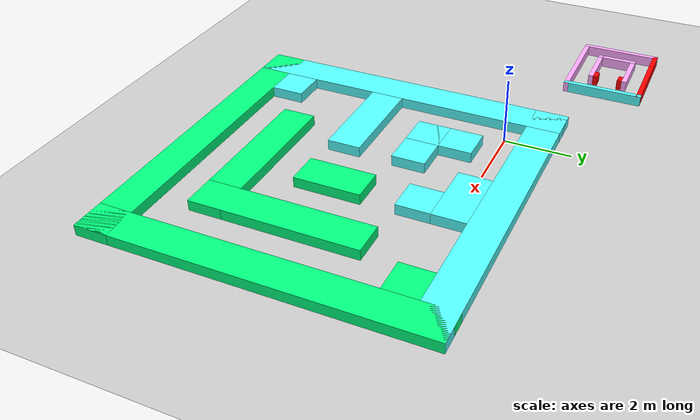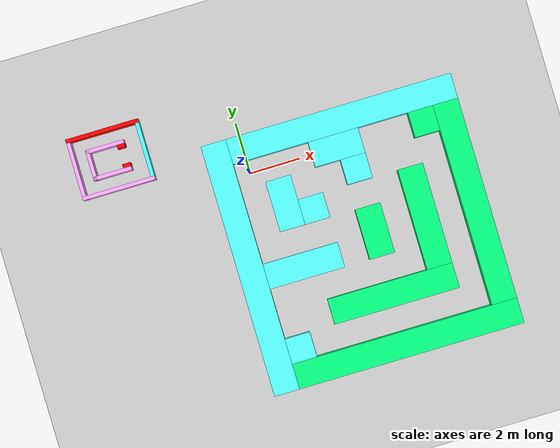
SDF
<sdf version="1.4">
  <world name="default">

    <scene>
      <ambient>0.4 0.4 0.4 1</ambient>
      <background>0.7 0.7 0.7 1</background>
      <shadows>true</shadows>
    </scene>

    <!-- A global light source -->
    <include>
      <uri>model://sun</uri>
    </include>

    <!-- A ground plane -->
    <include>
      <uri>model://ground_plane</uri>
    </include>

    <!-- Gait2.0's maze -->
    <include>
      <uri>model://gait_maze2.0</uri>
        <pose>5.066191 -3.515671 0 0 0 0</pose>
    </include>

    <!-- Doll's maze -->
    <include>
      <uri>model://doll_maze</uri>
        <pose>-5 2 0 0 0 0</pose>
    </include>

    <physics type="ode">
      <real_time_update_rate>1000.0</real_time_update_rate>
      <max_step_size>0.001</max_step_size>
      <real_time_factor>1</real_time_factor>
      <ode>
        <solver>
          <type>quick</type>
          <iters>150</iters>
          <precon_iters>0</precon_iters>
          <sor>1.400000</sor>
          <use_dynamic_moi_rescaling>1</use_dynamic_moi_rescaling>
        </solver>
        <constraints>
          <cfm>0.00001</cfm>
          <erp>0.2</erp>
          <contact_max_correcting_vel>2000.000000</contact_max_correcting_vel>
          <contact_surface_layer>0.01000</contact_surface_layer>
        </constraints>
      </ode>
    </physics>
  </world>

</sdf>

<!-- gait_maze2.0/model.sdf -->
<sdf version='1.6'>
  <model name='gait_maze2.0'>
    <link name='Wall_10'>
      <pose frame=''>-4.10576 2 0 0 0 -1.5708</pose>
      <self_collide>0</self_collide>
      <kinematic>0</kinematic>
      <visual name='Wall_10_Visual'>
        <pose frame=''>0 0 0.16 0 -0 0</pose>
        <geometry>
          <box>
            <size>2 1 0.32</size>
          </box>
        </geometry>
        <material>
          <script>
            <uri>file://media/materials/scripts/gazebo.material</uri>
            <name>Gazebo/Grey</name>
          </script>
          <ambient>0.333333 1 1 1</ambient>
          <diffuse>0.7 0.7 0.7 1</diffuse>
          <specular>0.01 0.01 0.01 1</specular>
          <emissive>0 0 0 1</emissive>
        </material>
        <cast_shadows>1</cast_shadows>
        <transparency>0</transparency>
      </visual>
      <collision name='Wall_10_Collision'>
        <laser_retro>0</laser_retro>
        <max_contacts>10</max_contacts>
        <pose frame=''>0 0 0.16 0 -0 0</pose>
        <geometry>
          <box>
            <size>2 1 0.32</size>
          </box>
        </geometry>
        <surface>
          <friction>
            <ode>
              <mu>1</mu>
              <mu2>1</mu2>
              <fdir1>0 0 0</fdir1>
              <slip1>0</slip1>
              <slip2>0</slip2>
            </ode>
            <torsional>
              <coefficient>1</coefficient>
              <patch_radius>0</patch_radius>
              <surface_radius>0</surface_radius>
              <use_patch_radius>1</use_patch_radius>
              <ode>
                <slip>0</slip>
              </ode>
            </torsional>
          </friction>
          <bounce>
            <restitution_coefficient>0</restitution_coefficient>
            <threshold>1e+06</threshold>
          </bounce>
          <contact>
            <collide_without_contact>0</collide_without_contact>
            <collide_without_contact_bitmask>1</collide_without_contact_bitmask>
            <collide_bitmask>1</collide_bitmask>
            <ode>
              <soft_cfm>0</soft_cfm>
              <soft_erp>0.2</soft_erp>
              <kp>1e+13</kp>
              <kd>1</kd>
              <max_vel>0.01</max_vel>
              <min_depth>0</min_depth>
            </ode>
            <bullet>
              <split_impulse>1</split_impulse>
              <split_impulse_penetration_threshold>-0.01</split_impulse_penetration_threshold>
              <soft_cfm>0</soft_cfm>
              <soft_erp>0.2</soft_erp>
              <kp>1e+13</kp>
              <kd>1</kd>
            </bullet>
          </contact>
        </surface>
      </collision>
    </link>
    <link name='Wall_13'>
      <pose frame=''>-3.60576 1.5 0 0 -0 0</pose>
      <self_collide>0</self_collide>
      <kinematic>0</kinematic>
      <visual name='Wall_13_Visual'>
        <pose frame=''>0 0 0.16 0 -0 0</pose>
        <geometry>
          <box>
            <size>2 1 0.32</size>
          </box>
        </geometry>
        <material>
          <script>
            <uri>file://media/materials/scripts/gazebo.material</uri>
            <name>Gazebo/Grey</name>
          </script>
          <ambient>0.333333 1 1 1</ambient>
          <diffuse>0.7 0.7 0.7 1</diffuse>
          <specular>0.01 0.01 0.01 1</specular>
          <emissive>0 0 0 1</emissive>
        </material>
        <cast_shadows>1</cast_shadows>
        <transparency>0</transparency>
      </visual>
      <collision name='Wall_13_Collision'>
        <laser_retro>0</laser_retro>
        <max_contacts>10</max_contacts>
        <pose frame=''>0 0 0.16 0 -0 0</pose>
        <geometry>
          <box>
            <size>2 1 0.32</size>
          </box>
        </geometry>
        <surface>
          <friction>
            <ode>
              <mu>1</mu>
              <mu2>1</mu2>
              <fdir1>0 0 0</fdir1>
              <slip1>0</slip1>
              <slip2>0</slip2>
            </ode>
            <torsional>
              <coefficient>1</coefficient>
              <patch_radius>0</patch_radius>
              <surface_radius>0</surface_radius>
              <use_patch_radius>1</use_patch_radius>
              <ode>
                <slip>0</slip>
              </ode>
            </torsional>
          </friction>
          <bounce>
            <restitution_coefficient>0</restitution_coefficient>
            <threshold>1e+06</threshold>
          </bounce>
          <contact>
            <collide_without_contact>0</collide_without_contact>
            <collide_without_contact_bitmask>1</collide_without_contact_bitmask>
            <collide_bitmask>1</collide_bitmask>
            <ode>
              <soft_cfm>0</soft_cfm>
              <soft_erp>0.2</soft_erp>
              <kp>1e+13</kp>
              <kd>1</kd>
              <max_vel>0.01</max_vel>
              <min_depth>0</min_depth>
            </ode>
            <bullet>
              <split_impulse>1</split_impulse>
              <split_impulse_penetration_threshold>-0.01</split_impulse_penetration_threshold>
              <soft_cfm>0</soft_cfm>
              <soft_erp>0.2</soft_erp>
              <kp>1e+13</kp>
              <kd>1</kd>
            </bullet>
          </contact>
        </surface>
      </collision>
    </link>
    <link name='Wall_15'>
      <pose frame=''>-1.60576 3.5 0 0 -0 0</pose>
      <self_collide>0</self_collide>
      <kinematic>0</kinematic>
      <visual name='Wall_15_Visual'>
        <pose frame=''>0 0 0.16 0 -0 0</pose>
        <geometry>
          <box>
            <size>2 1 0.32</size>
          </box>
        </geometry>
        <material>
          <script>
            <uri>file://media/materials/scripts/gazebo.material</uri>
            <name>Gazebo/Grey</name>
          </script>
          <ambient>0.333333 1 1 1</ambient>
          <diffuse>0.7 0.7 0.7 1</diffuse>
          <specular>0.01 0.01 0.01 1</specular>
          <emissive>0 0 0 1</emissive>
        </material>
        <cast_shadows>1</cast_shadows>
        <transparency>0</transparency>
      </visual>
      <collision name='Wall_15_Collision'>
        <laser_retro>0</laser_retro>
        <max_contacts>10</max_contacts>
        <pose frame=''>0 0 0.16 0 -0 0</pose>
        <geometry>
          <box>
            <size>2 1 0.32</size>
          </box>
        </geometry>
        <surface>
          <friction>
            <ode>
              <mu>1</mu>
              <mu2>1</mu2>
              <fdir1>0 0 0</fdir1>
              <slip1>0</slip1>
              <slip2>0</slip2>
            </ode>
            <torsional>
              <coefficient>1</coefficient>
              <patch_radius>0</patch_radius>
              <surface_radius>0</surface_radius>
              <use_patch_radius>1</use_patch_radius>
              <ode>
                <slip>0</slip>
              </ode>
            </torsional>
          </friction>
          <bounce>
            <restitution_coefficient>0</restitution_coefficient>
            <threshold>1e+06</threshold>
          </bounce>
          <contact>
            <collide_without_contact>0</collide_without_contact>
            <collide_without_contact_bitmask>1</collide_without_contact_bitmask>
            <collide_bitmask>1</collide_bitmask>
            <ode>
              <soft_cfm>0</soft_cfm>
              <soft_erp>0.2</soft_erp>
              <kp>1e+13</kp>
              <kd>1</kd>
              <max_vel>0.01</max_vel>
              <min_depth>0</min_depth>
            </ode>
            <bullet>
              <split_impulse>1</split_impulse>
              <split_impulse_penetration_threshold>-0.01</split_impulse_penetration_threshold>
              <soft_cfm>0</soft_cfm>
              <soft_erp>0.2</soft_erp>
              <kp>1e+13</kp>
              <kd>1</kd>
            </bullet>
          </contact>
        </surface>
      </collision>
    </link>
    <link name='Wall_17'>
      <pose frame=''>1.89474 3.5 0 0 -0 0</pose>
      <self_collide>0</self_collide>
      <kinematic>0</kinematic>
      <visual name='Wall_17_Visual'>
        <pose frame=''>0 0 0.16 0 -0 0</pose>
        <geometry>
          <box>
            <size>1 1 0.32</size>
          </box>
        </geometry>
        <material>
          <script>
            <uri>file://media/materials/scripts/gazebo.material</uri>
            <name>Gazebo/Grey</name>
          </script>
          <ambient>0 1 0.498039 1</ambient>
          <diffuse>0.7 0.7 0.7 1</diffuse>
          <specular>0.01 0.01 0.01 1</specular>
          <emissive>0 0 0 1</emissive>
        </material>
        <cast_shadows>1</cast_shadows>
        <transparency>0</transparency>
      </visual>
      <collision name='Wall_17_Collision'>
        <laser_retro>0</laser_retro>
        <max_contacts>10</max_contacts>
        <pose frame=''>0 0 0.16 0 -0 0</pose>
        <geometry>
          <box>
            <size>1 1 0.32</size>
          </box>
        </geometry>
        <surface>
          <friction>
            <ode>
              <mu>1</mu>
              <mu2>1</mu2>
              <fdir1>0 0 0</fdir1>
              <slip1>0</slip1>
              <slip2>0</slip2>
            </ode>
            <torsional>
              <coefficient>1</coefficient>
              <patch_radius>0</patch_radius>
              <surface_radius>0</surface_radius>
              <use_patch_radius>1</use_patch_radius>
              <ode>
                <slip>0</slip>
              </ode>
            </torsional>
          </friction>
          <bounce>
            <restitution_coefficient>0</restitution_coefficient>
            <threshold>1e+06</threshold>
          </bounce>
          <contact>
            <collide_without_contact>0</collide_without_contact>
            <collide_without_contact_bitmask>1</collide_without_contact_bitmask>
            <collide_bitmask>1</collide_bitmask>
            <ode>
              <soft_cfm>0</soft_cfm>
              <soft_erp>0.2</soft_erp>
              <kp>1e+13</kp>
              <kd>1</kd>
              <max_vel>0.01</max_vel>
              <min_depth>0</min_depth>
            </ode>
            <bullet>
              <split_impulse>1</split_impulse>
              <split_impulse_penetration_threshold>-0.01</split_impulse_penetration_threshold>
              <soft_cfm>0</soft_cfm>
              <soft_erp>0.2</soft_erp>
              <kp>1e+13</kp>
              <kd>1</kd>
            </bullet>
          </contact>
        </surface>
      </collision>
    </link>
    <link name='Wall_19'>
      <pose frame=''>-5.10626 -3.5 0 0 -0 0</pose>
      <self_collide>0</self_collide>
      <kinematic>0</kinematic>
      <visual name='Wall_19_Visual'>
        <pose frame=''>0 0 0.16 0 -0 0</pose>
        <geometry>
          <box>
            <size>1.001 1 0.32</size>
          </box>
        </geometry>
        <material>
          <script>
            <uri>file://media/materials/scripts/gazebo.material</uri>
            <name>Gazebo/Grey</name>
          </script>
          <ambient>0.333333 1 1 1</ambient>
          <diffuse>0.7 0.7 0.7 1</diffuse>
          <specular>0.01 0.01 0.01 1</specular>
          <emissive>0 0 0 1</emissive>
        </material>
        <cast_shadows>1</cast_shadows>
        <transparency>0</transparency>
      </visual>
      <collision name='Wall_19_Collision'>
        <laser_retro>0</laser_retro>
        <max_contacts>10</max_contacts>
        <pose frame=''>0 0 0.16 0 -0 0</pose>
        <geometry>
          <box>
            <size>1.001 1 0.32</size>
          </box>
        </geometry>
        <surface>
          <friction>
            <ode>
              <mu>1</mu>
              <mu2>1</mu2>
              <fdir1>0 0 0</fdir1>
              <slip1>0</slip1>
              <slip2>0</slip2>
            </ode>
            <torsional>
              <coefficient>1</coefficient>
              <patch_radius>0</patch_radius>
              <surface_radius>0</surface_radius>
              <use_patch_radius>1</use_patch_radius>
              <ode>
                <slip>0</slip>
              </ode>
            </torsional>
          </friction>
          <bounce>
            <restitution_coefficient>0</restitution_coefficient>
            <threshold>1e+06</threshold>
          </bounce>
          <contact>
            <collide_without_contact>0</collide_without_contact>
            <collide_without_contact_bitmask>1</collide_without_contact_bitmask>
            <collide_bitmask>1</collide_bitmask>
            <ode>
              <soft_cfm>0</soft_cfm>
              <soft_erp>0.2</soft_erp>
              <kp>1e+13</kp>
              <kd>1</kd>
              <max_vel>0.01</max_vel>
              <min_depth>0</min_depth>
            </ode>
            <bullet>
              <split_impulse>1</split_impulse>
              <split_impulse_penetration_threshold>-0.01</split_impulse_penetration_threshold>
              <soft_cfm>0</soft_cfm>
              <soft_erp>0.2</soft_erp>
              <kp>1e+13</kp>
              <kd>1</kd>
            </bullet>
          </contact>
        </surface>
      </collision>
    </link>
    <link name='Wall_2'>
      <pose frame=''>-6.10576 0 0 0 -0 1.5708</pose>
      <self_collide>0</self_collide>
      <kinematic>0</kinematic>
      <visual name='Wall_2_Visual'>
        <pose frame=''>0 0 0.16 0 -0 0</pose>
        <geometry>
          <box>
            <size>10 1 0.32</size>
          </box>
        </geometry>
        <material>
          <script>
            <uri>file://media/materials/scripts/gazebo.material</uri>
            <name>Gazebo/Grey</name>
          </script>
          <ambient>0.333333 1 1 1</ambient>
          <diffuse>0.7 0.7 0.7 1</diffuse>
          <specular>0.01 0.01 0.01 1</specular>
          <emissive>0 0 0 1</emissive>
        </material>
        <cast_shadows>1</cast_shadows>
        <transparency>0</transparency>
      </visual>
      <collision name='Wall_2_Collision'>
        <laser_retro>0</laser_retro>
        <max_contacts>10</max_contacts>
        <pose frame=''>0 0 0.16 0 -0 0</pose>
        <geometry>
          <box>
            <size>10 1 0.32</size>
          </box>
        </geometry>
        <surface>
          <friction>
            <ode>
              <mu>1</mu>
              <mu2>1</mu2>
              <fdir1>0 0 0</fdir1>
              <slip1>0</slip1>
              <slip2>0</slip2>
            </ode>
            <torsional>
              <coefficient>1</coefficient>
              <patch_radius>0</patch_radius>
              <surface_radius>0</surface_radius>
              <use_patch_radius>1</use_patch_radius>
              <ode>
                <slip>0</slip>
              </ode>
            </torsional>
          </friction>
          <bounce>
            <restitution_coefficient>0</restitution_coefficient>
            <threshold>1e+06</threshold>
          </bounce>
          <contact>
            <collide_without_contact>0</collide_without_contact>
            <collide_without_contact_bitmask>1</collide_without_contact_bitmask>
            <collide_bitmask>1</collide_bitmask>
            <ode>
              <soft_cfm>0</soft_cfm>
              <soft_erp>0.2</soft_erp>
              <kp>1e+13</kp>
              <kd>1</kd>
              <max_vel>0.01</max_vel>
              <min_depth>0</min_depth>
            </ode>
            <bullet>
              <split_impulse>1</split_impulse>
              <split_impulse_penetration_threshold>-0.01</split_impulse_penetration_threshold>
              <soft_cfm>0</soft_cfm>
              <soft_erp>0.2</soft_erp>
              <kp>1e+13</kp>
              <kd>1</kd>
            </bullet>
          </contact>
        </surface>
      </collision>
    </link>
    <link name='Wall_21'>
      <pose frame=''>-1.10576 -2.5 0 0 -0 0</pose>
      <self_collide>0</self_collide>
      <kinematic>0</kinematic>
      <visual name='Wall_21_Visual'>
        <pose frame=''>0 0 0.16 0 -0 0</pose>
        <geometry>
          <box>
            <size>5 1 0.32</size>
          </box>
        </geometry>
        <material>
          <script>
            <uri>file://media/materials/scripts/gazebo.material</uri>
            <name>Gazebo/Grey</name>
          </script>
          <ambient>0 1 0.498039 1</ambient>
          <diffuse>0.7 0.7 0.7 1</diffuse>
          <specular>0.01 0.01 0.01 1</specular>
          <emissive>0 0 0 1</emissive>
        </material>
        <cast_shadows>1</cast_shadows>
        <transparency>0</transparency>
      </visual>
      <collision name='Wall_21_Collision'>
        <laser_retro>0</laser_retro>
        <max_contacts>10</max_contacts>
        <pose frame=''>0 0 0.16 0 -0 0</pose>
        <geometry>
          <box>
            <size>5 1 0.32</size>
          </box>
        </geometry>
        <surface>
          <friction>
            <ode>
              <mu>1</mu>
              <mu2>1</mu2>
              <fdir1>0 0 0</fdir1>
              <slip1>0</slip1>
              <slip2>0</slip2>
            </ode>
            <torsional>
              <coefficient>1</coefficient>
              <patch_radius>0</patch_radius>
              <surface_radius>0</surface_radius>
              <use_patch_radius>1</use_patch_radius>
              <ode>
                <slip>0</slip>
              </ode>
            </torsional>
          </friction>
          <bounce>
            <restitution_coefficient>0</restitution_coefficient>
            <threshold>1e+06</threshold>
          </bounce>
          <contact>
            <collide_without_contact>0</collide_without_contact>
            <collide_without_contact_bitmask>1</collide_without_contact_bitmask>
            <collide_bitmask>1</collide_bitmask>
            <ode>
              <soft_cfm>0</soft_cfm>
              <soft_erp>0.2</soft_erp>
              <kp>1e+13</kp>
              <kd>1</kd>
              <max_vel>0.01</max_vel>
              <min_depth>0</min_depth>
            </ode>
            <bullet>
              <split_impulse>1</split_impulse>
              <split_impulse_penetration_threshold>-0.01</split_impulse_penetration_threshold>
              <soft_cfm>0</soft_cfm>
              <soft_erp>0.2</soft_erp>
              <kp>1e+13</kp>
              <kd>1</kd>
            </bullet>
          </contact>
        </surface>
      </collision>
    </link>
    <link name='Wall_23'>
      <pose frame=''>0.89424 -0.5 0 0 0 -1.5708</pose>
      <self_collide>0</self_collide>
      <kinematic>0</kinematic>
      <visual name='Wall_23_Visual'>
        <pose frame=''>0 0 0.16 0 -0 0</pose>
        <geometry>
          <box>
            <size>5 1 0.32</size>
          </box>
        </geometry>
        <material>
          <script>
            <uri>file://media/materials/scripts/gazebo.material</uri>
            <name>Gazebo/Grey</name>
          </script>
          <ambient>0 1 0.498039 1</ambient>
          <diffuse>0.7 0.7 0.7 1</diffuse>
          <specular>0.01 0.01 0.01 1</specular>
          <emissive>0 0 0 1</emissive>
        </material>
        <cast_shadows>1</cast_shadows>
        <transparency>0</transparency>
      </visual>
      <collision name='Wall_23_Collision'>
        <laser_retro>0</laser_retro>
        <max_contacts>10</max_contacts>
        <pose frame=''>0 0 0.16 0 -0 0</pose>
        <geometry>
          <box>
            <size>5 1 0.32</size>
          </box>
        </geometry>
        <surface>
          <friction>
            <ode>
              <mu>1</mu>
              <mu2>1</mu2>
              <fdir1>0 0 0</fdir1>
              <slip1>0</slip1>
              <slip2>0</slip2>
            </ode>
            <torsional>
              <coefficient>1</coefficient>
              <patch_radius>0</patch_radius>
              <surface_radius>0</surface_radius>
              <use_patch_radius>1</use_patch_radius>
              <ode>
                <slip>0</slip>
              </ode>
            </torsional>
          </friction>
          <bounce>
            <restitution_coefficient>0</restitution_coefficient>
            <threshold>1e+06</threshold>
          </bounce>
          <contact>
            <collide_without_contact>0</collide_without_contact>
            <collide_without_contact_bitmask>1</collide_without_contact_bitmask>
            <collide_bitmask>1</collide_bitmask>
            <ode>
              <soft_cfm>0</soft_cfm>
              <soft_erp>0.2</soft_erp>
              <kp>1e+13</kp>
              <kd>1</kd>
              <max_vel>0.01</max_vel>
              <min_depth>0</min_depth>
            </ode>
            <bullet>
              <split_impulse>1</split_impulse>
              <split_impulse_penetration_threshold>-0.01</split_impulse_penetration_threshold>
              <soft_cfm>0</soft_cfm>
              <soft_erp>0.2</soft_erp>
              <kp>1e+13</kp>
              <kd>1</kd>
            </bullet>
          </contact>
        </surface>
      </collision>
    </link>
    <link name='Wall_25'>
      <pose frame=''>-4.10576 -0.5 0 0 -0 0</pose>
      <self_collide>0</self_collide>
      <kinematic>0</kinematic>
      <visual name='Wall_25_Visual'>
        <pose frame=''>0 0 0.16 0 -0 0</pose>
        <geometry>
          <box>
            <size>3 1 0.32</size>
          </box>
        </geometry>
        <material>
          <script>
            <uri>file://media/materials/scripts/gazebo.material</uri>
            <name>Gazebo/Grey</name>
          </script>
          <ambient>0.333333 1 1 1</ambient>
          <diffuse>0.7 0.7 0.7 1</diffuse>
          <specular>0.01 0.01 0.01 1</specular>
          <emissive>0 0 0 1</emissive>
        </material>
        <cast_shadows>1</cast_shadows>
        <transparency>0</transparency>
      </visual>
      <collision name='Wall_25_Collision'>
        <laser_retro>0</laser_retro>
        <max_contacts>10</max_contacts>
        <pose frame=''>0 0 0.16 0 -0 0</pose>
        <geometry>
          <box>
            <size>3 1 0.32</size>
          </box>
        </geometry>
        <surface>
          <friction>
            <ode>
              <mu>1</mu>
              <mu2>1</mu2>
              <fdir1>0 0 0</fdir1>
              <slip1>0</slip1>
              <slip2>0</slip2>
            </ode>
            <torsional>
              <coefficient>1</coefficient>
              <patch_radius>0</patch_radius>
              <surface_radius>0</surface_radius>
              <use_patch_radius>1</use_patch_radius>
              <ode>
                <slip>0</slip>
              </ode>
            </torsional>
          </friction>
          <bounce>
            <restitution_coefficient>0</restitution_coefficient>
            <threshold>1e+06</threshold>
          </bounce>
          <contact>
            <collide_without_contact>0</collide_without_contact>
            <collide_without_contact_bitmask>1</collide_without_contact_bitmask>
            <collide_bitmask>1</collide_bitmask>
            <ode>
              <soft_cfm>0</soft_cfm>
              <soft_erp>0.2</soft_erp>
              <kp>1e+13</kp>
              <kd>1</kd>
              <max_vel>0.01</max_vel>
              <min_depth>0</min_depth>
            </ode>
            <bullet>
              <split_impulse>1</split_impulse>
              <split_impulse_penetration_threshold>-0.01</split_impulse_penetration_threshold>
              <soft_cfm>0</soft_cfm>
              <soft_erp>0.2</soft_erp>
              <kp>1e+13</kp>
              <kd>1</kd>
            </bullet>
          </contact>
        </surface>
      </collision>
    </link>
    <link name='Wall_28'>
      <pose frame=''>-1.10576 0 0 0 -0 1.5708</pose>
      <self_collide>0</self_collide>
      <kinematic>0</kinematic>
      <visual name='Wall_28_Visual'>
        <pose frame=''>0 0 0.16 0 -0 0</pose>
        <geometry>
          <box>
            <size>2 1 0.32</size>
          </box>
        </geometry>
        <material>
          <script>
            <uri>file://media/materials/scripts/gazebo.material</uri>
            <name>Gazebo/Grey</name>
          </script>
          <ambient>0 1 0.498039 1</ambient>
          <diffuse>0.7 0.7 0.7 1</diffuse>
          <specular>0.01 0.01 0.01 1</specular>
          <emissive>0 0 0 1</emissive>
        </material>
        <cast_shadows>1</cast_shadows>
        <transparency>0</transparency>
      </visual>
      <collision name='Wall_28_Collision'>
        <laser_retro>0</laser_retro>
        <max_contacts>10</max_contacts>
        <pose frame=''>0 0 0.16 0 -0 0</pose>
        <geometry>
          <box>
            <size>2 1 0.32</size>
          </box>
        </geometry>
        <surface>
          <friction>
            <ode>
              <mu>1</mu>
              <mu2>1</mu2>
              <fdir1>0 0 0</fdir1>
              <slip1>0</slip1>
              <slip2>0</slip2>
            </ode>
            <torsional>
              <coefficient>1</coefficient>
              <patch_radius>0</patch_radius>
              <surface_radius>0</surface_radius>
              <use_patch_radius>1</use_patch_radius>
              <ode>
                <slip>0</slip>
              </ode>
            </torsional>
          </friction>
          <bounce>
            <restitution_coefficient>0</restitution_coefficient>
            <threshold>1e+06</threshold>
          </bounce>
          <contact>
            <collide_without_contact>0</collide_without_contact>
            <collide_without_contact_bitmask>1</collide_without_contact_bitmask>
            <collide_bitmask>1</collide_bitmask>
            <ode>
              <soft_cfm>0</soft_cfm>
              <soft_erp>0.2</soft_erp>
              <kp>1e+13</kp>
              <kd>1</kd>
              <max_vel>0.01</max_vel>
              <min_depth>0</min_depth>
            </ode>
            <bullet>
              <split_impulse>1</split_impulse>
              <split_impulse_penetration_threshold>-0.01</split_impulse_penetration_threshold>
              <soft_cfm>0</soft_cfm>
              <soft_erp>0.2</soft_erp>
              <kp>1e+13</kp>
              <kd>1</kd>
            </bullet>
          </contact>
        </surface>
      </collision>
    </link>
    <link name='Wall_34'>
      <pose frame=''>-1.10576 2.5005 0 0 -0 1.5708</pose>
      <self_collide>0</self_collide>
      <kinematic>0</kinematic>
      <visual name='Wall_34_Visual'>
        <pose frame=''>0 0 0.16 0 -0 0</pose>
        <geometry>
          <box>
            <size>1.001 1 0.32</size>
          </box>
        </geometry>
        <material>
          <script>
            <uri>file://media/materials/scripts/gazebo.material</uri>
            <name>Gazebo/Grey</name>
          </script>
          <ambient>0.333333 1 1 1</ambient>
          <diffuse>0.7 0.7 0.7 1</diffuse>
          <specular>0.01 0.01 0.01 1</specular>
          <emissive>0 0 0 1</emissive>
        </material>
        <cast_shadows>1</cast_shadows>
        <transparency>0</transparency>
      </visual>
      <collision name='Wall_34_Collision'>
        <laser_retro>0</laser_retro>
        <max_contacts>10</max_contacts>
        <pose frame=''>0 0 0.16 0 -0 0</pose>
        <geometry>
          <box>
            <size>1.001 1 0.32</size>
          </box>
        </geometry>
        <surface>
          <friction>
            <ode>
              <mu>1</mu>
              <mu2>1</mu2>
              <fdir1>0 0 0</fdir1>
              <slip1>0</slip1>
              <slip2>0</slip2>
            </ode>
            <torsional>
              <coefficient>1</coefficient>
              <patch_radius>0</patch_radius>
              <surface_radius>0</surface_radius>
              <use_patch_radius>1</use_patch_radius>
              <ode>
                <slip>0</slip>
              </ode>
            </torsional>
          </friction>
          <bounce>
            <restitution_coefficient>0</restitution_coefficient>
            <threshold>1e+06</threshold>
          </bounce>
          <contact>
            <collide_without_contact>0</collide_without_contact>
            <collide_without_contact_bitmask>1</collide_without_contact_bitmask>
            <collide_bitmask>1</collide_bitmask>
            <ode>
              <soft_cfm>0</soft_cfm>
              <soft_erp>0.2</soft_erp>
              <kp>1e+13</kp>
              <kd>1</kd>
              <max_vel>0.01</max_vel>
              <min_depth>0</min_depth>
            </ode>
            <bullet>
              <split_impulse>1</split_impulse>
              <split_impulse_penetration_threshold>-0.01</split_impulse_penetration_threshold>
              <soft_cfm>0</soft_cfm>
              <soft_erp>0.2</soft_erp>
              <kp>1e+13</kp>
              <kd>1</kd>
            </bullet>
          </contact>
        </surface>
      </collision>
    </link>
    <link name='Wall_4'>
      <pose frame=''>-1.60576 4.5 0 0 -0 0</pose>
      <self_collide>0</self_collide>
      <kinematic>0</kinematic>
      <visual name='Wall_4_Visual'>
        <pose frame=''>0 0 0.16 0 -0 0</pose>
        <geometry>
          <box>
            <size>10 1 0.32</size>
          </box>
        </geometry>
        <material>
          <script>
            <uri>file://media/materials/scripts/gazebo.material</uri>
            <name>Gazebo/Grey</name>
          </script>
          <ambient>0.333333 1 1 1</ambient>
          <diffuse>0.7 0.7 0.7 1</diffuse>
          <specular>0.01 0.01 0.01 1</specular>
          <emissive>0 0 0 1</emissive>
        </material>
        <cast_shadows>1</cast_shadows>
        <transparency>0</transparency>
      </visual>
      <collision name='Wall_4_Collision'>
        <laser_retro>0</laser_retro>
        <max_contacts>10</max_contacts>
        <pose frame=''>0 0 0.16 0 -0 0</pose>
        <geometry>
          <box>
            <size>10 1 0.32</size>
          </box>
        </geometry>
        <surface>
          <friction>
            <ode>
              <mu>1</mu>
              <mu2>1</mu2>
              <fdir1>0 0 0</fdir1>
              <slip1>0</slip1>
              <slip2>0</slip2>
            </ode>
            <torsional>
              <coefficient>1</coefficient>
              <patch_radius>0</patch_radius>
              <surface_radius>0</surface_radius>
              <use_patch_radius>1</use_patch_radius>
              <ode>
                <slip>0</slip>
              </ode>
            </torsional>
          </friction>
          <bounce>
            <restitution_coefficient>0</restitution_coefficient>
            <threshold>1e+06</threshold>
          </bounce>
          <contact>
            <collide_without_contact>0</collide_without_contact>
            <collide_without_contact_bitmask>1</collide_without_contact_bitmask>
            <collide_bitmask>1</collide_bitmask>
            <ode>
              <soft_cfm>0</soft_cfm>
              <soft_erp>0.2</soft_erp>
              <kp>1e+13</kp>
              <kd>1</kd>
              <max_vel>0.01</max_vel>
              <min_depth>0</min_depth>
            </ode>
            <bullet>
              <split_impulse>1</split_impulse>
              <split_impulse_penetration_threshold>-0.01</split_impulse_penetration_threshold>
              <soft_cfm>0</soft_cfm>
              <soft_erp>0.2</soft_erp>
              <kp>1e+13</kp>
              <kd>1</kd>
            </bullet>
          </contact>
        </surface>
      </collision>
    </link>
    <link name='Wall_6'>
      <pose frame=''>-1.60576 -4.5 0 0 -0 0</pose>
      <self_collide>0</self_collide>
      <kinematic>0</kinematic>
      <visual name='Wall_6_Visual'>
        <pose frame=''>0 0 0.16 0 -0 0</pose>
        <geometry>
          <box>
            <size>10 1 0.32</size>
          </box>
        </geometry>
        <material>
          <script>
            <uri>file://media/materials/scripts/gazebo.material</uri>
            <name>Gazebo/Grey</name>
          </script>
          <ambient>0 1 0.498039 1</ambient>
          <diffuse>0.7 0.7 0.7 1</diffuse>
          <specular>0.01 0.01 0.01 1</specular>
          <emissive>0 0 0 1</emissive>
        </material>
        <cast_shadows>1</cast_shadows>
        <transparency>0</transparency>
      </visual>
      <collision name='Wall_6_Collision'>
        <laser_retro>0</laser_retro>
        <max_contacts>10</max_contacts>
        <pose frame=''>0 0 0.16 0 -0 0</pose>
        <geometry>
          <box>
            <size>10 1 0.32</size>
          </box>
        </geometry>
        <surface>
          <friction>
            <ode>
              <mu>1</mu>
              <mu2>1</mu2>
              <fdir1>0 0 0</fdir1>
              <slip1>0</slip1>
              <slip2>0</slip2>
            </ode>
            <torsional>
              <coefficient>1</coefficient>
              <patch_radius>0</patch_radius>
              <surface_radius>0</surface_radius>
              <use_patch_radius>1</use_patch_radius>
              <ode>
                <slip>0</slip>
              </ode>
            </torsional>
          </friction>
          <bounce>
            <restitution_coefficient>0</restitution_coefficient>
            <threshold>1e+06</threshold>
          </bounce>
          <contact>
            <collide_without_contact>0</collide_without_contact>
            <collide_without_contact_bitmask>1</collide_without_contact_bitmask>
            <collide_bitmask>1</collide_bitmask>
            <ode>
              <soft_cfm>0</soft_cfm>
              <soft_erp>0.2</soft_erp>
              <kp>1e+13</kp>
              <kd>1</kd>
              <max_vel>0.01</max_vel>
              <min_depth>0</min_depth>
            </ode>
            <bullet>
              <split_impulse>1</split_impulse>
              <split_impulse_penetration_threshold>-0.01</split_impulse_penetration_threshold>
              <soft_cfm>0</soft_cfm>
              <soft_erp>0.2</soft_erp>
              <kp>1e+13</kp>
              <kd>1</kd>
            </bullet>
          </contact>
        </surface>
      </collision>
    </link>
    <link name='Wall_8'>
      <pose frame=''>2.89424 0 0 0 0 -1.5708</pose>
      <self_collide>0</self_collide>
      <kinematic>0</kinematic>
      <visual name='Wall_8_Visual'>
        <pose frame=''>0 0 0.16 0 -0 0</pose>
        <geometry>
          <box>
            <size>10 1 0.32</size>
          </box>
        </geometry>
        <material>
          <script>
            <uri>file://media/materials/scripts/gazebo.material</uri>
            <name>Gazebo/Grey</name>
          </script>
          <ambient>0 1 0.498039 1</ambient>
          <diffuse>0.7 0.7 0.7 1</diffuse>
          <specular>0.01 0.01 0.01 1</specular>
          <emissive>0 0 0 1</emissive>
        </material>
        <cast_shadows>1</cast_shadows>
        <transparency>0</transparency>
      </visual>
      <collision name='Wall_8_Collision'>
        <laser_retro>0</laser_retro>
        <max_contacts>10</max_contacts>
        <pose frame=''>0 0 0.16 0 -0 0</pose>
        <geometry>
          <box>
            <size>10 1 0.32</size>
          </box>
        </geometry>
        <surface>
          <friction>
            <ode>
              <mu>1</mu>
              <mu2>1</mu2>
              <fdir1>0 0 0</fdir1>
              <slip1>0</slip1>
              <slip2>0</slip2>
            </ode>
            <torsional>
              <coefficient>1</coefficient>
              <patch_radius>0</patch_radius>
              <surface_radius>0</surface_radius>
              <use_patch_radius>1</use_patch_radius>
              <ode>
                <slip>0</slip>
              </ode>
            </torsional>
          </friction>
          <bounce>
            <restitution_coefficient>0</restitution_coefficient>
            <threshold>1e+06</threshold>
          </bounce>
          <contact>
            <collide_without_contact>0</collide_without_contact>
            <collide_without_contact_bitmask>1</collide_without_contact_bitmask>
            <collide_bitmask>1</collide_bitmask>
            <ode>
              <soft_cfm>0</soft_cfm>
              <soft_erp>0.2</soft_erp>
              <kp>1e+13</kp>
              <kd>1</kd>
              <max_vel>0.01</max_vel>
              <min_depth>0</min_depth>
            </ode>
            <bullet>
              <split_impulse>1</split_impulse>
              <split_impulse_penetration_threshold>-0.01</split_impulse_penetration_threshold>
              <soft_cfm>0</soft_cfm>
              <soft_erp>0.2</soft_erp>
              <kp>1e+13</kp>
              <kd>1</kd>
            </bullet>
          </contact>
        </surface>
      </collision>
    </link>
    <static>1</static>
    <allow_auto_disable>1</allow_auto_disable>
  </model>
</sdf>

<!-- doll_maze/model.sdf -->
<sdf version='1.6'>
  <model name='doll_maze'>
    <pose frame=''>-2.627 0.1445 0 0 -0 0</pose>
    <link name='Wall_0'>
      <collision name='Wall_0_Collision'>
        <geometry>
          <box>
            <size>2.896 0.15 0.32</size>
          </box>
        </geometry>
        <pose frame=''>0 0 0.16 0 -0 0</pose>
      </collision>
      <visual name='Wall_0_Visual'>
        <pose frame=''>0 0 0.16 0 -0 0</pose>
        <geometry>
          <box>
            <size>2.896 0.15 0.32</size>
          </box>
        </geometry>
        <material>
          <script>
            <uri>file://media/materials/scripts/gazebo.material</uri>
            <name>Gazebo/Grey</name>
          </script>
          <ambient>1 0.666667 1 1</ambient>
        </material>
      </visual>
      <pose frame=''>0 -1.1445 0 0 -0 0</pose>
    </link>
    <link name='Wall_11'>
      <collision name='Wall_11_Collision'>
        <geometry>
          <box>
            <size>1.524 0.15 0.32</size>
          </box>
        </geometry>
        <pose frame=''>0 0 0.16 0 -0 0</pose>
      </collision>
      <visual name='Wall_11_Visual'>
        <pose frame=''>0 0 0.16 0 -0 0</pose>
        <geometry>
          <box>
            <size>1.524 0.15 0.32</size>
          </box>
        </geometry>
        <material>
          <script>
            <uri>file://media/materials/scripts/gazebo.material</uri>
            <name>Gazebo/Grey</name>
          </script>
          <ambient>1 0.666667 1 1</ambient>
        </material>
      </visual>
      <pose frame=''>-0.076 0.5345 0 0 -0 0</pose>
    </link>
    <link name='Wall_13'>
      <collision name='Wall_13_Collision'>
        <geometry>
          <box>
            <size>1.524 0.15 0.32</size>
          </box>
        </geometry>
        <pose frame=''>0 0 0.16 0 -0 0</pose>
      </collision>
      <visual name='Wall_13_Visual'>
        <pose frame=''>0 0 0.16 0 -0 0</pose>
        <geometry>
          <box>
            <size>1.524 0.15 0.32</size>
          </box>
        </geometry>
        <material>
          <script>
            <uri>file://media/materials/scripts/gazebo.material</uri>
            <name>Gazebo/Grey</name>
          </script>
          <ambient>1 0.666667 1 1</ambient>
        </material>
      </visual>
      <pose frame=''>-0.076 -0.5345 0 0 -0 0</pose>
    </link>
    <link name='Wall_17'>
      <collision name='Wall_17_Collision'>
        <geometry>
          <box>
            <size>0.304 0.15 0.32</size>
          </box>
        </geometry>
        <pose frame=''>0 0 0.16 0 -0 0</pose>
      </collision>
      <visual name='Wall_17_Visual'>
        <pose frame=''>0 0 0.16 0 -0 0</pose>
        <geometry>
          <box>
            <size>0.304 0.15 0.32</size>
          </box>
        </geometry>
        <material>
          <script>
            <uri>file://media/materials/scripts/gazebo.material</uri>
            <name>Gazebo/Grey</name>
          </script>
          <ambient>1 0 0 1</ambient>
        </material>
      </visual>
      <pose frame=''>0.534 0.3845 0 0 -0 0</pose>
    </link>
    <link name='Wall_19'>
      <collision name='Wall_19_Collision'>
        <geometry>
          <box>
            <size>0.304 0.15 0.32</size>
          </box>
        </geometry>
        <pose frame=''>0 0 0.16 0 -0 0</pose>
      </collision>
      <visual name='Wall_19_Visual'>
        <pose frame=''>0 0 0.16 0 -0 0</pose>
        <geometry>
          <box>
            <size>0.304 0.15 0.32</size>
          </box>
        </geometry>
        <material>
          <script>
            <uri>file://media/materials/scripts/gazebo.material</uri>
            <name>Gazebo/Grey</name>
          </script>
          <ambient>1 0 0 1</ambient>
        </material>
      </visual>
      <pose frame=''>0.534 -0.3845 0 0 -0 0</pose>
    </link>
    <link name='Wall_2'>
      <collision name='Wall_2_Collision'>
        <geometry>
          <box>
            <size>2.896 0.15 0.32</size>
          </box>
        </geometry>
        <pose frame=''>0 0 0.16 0 -0 0</pose>
      </collision>
      <visual name='Wall_2_Visual'>
        <pose frame=''>0 0 0.16 0 -0 0</pose>
        <geometry>
          <box>
            <size>2.896 0.15 0.32</size>
          </box>
        </geometry>
        <material>
          <script>
            <uri>file://media/materials/scripts/gazebo.material</uri>
            <name>Gazebo/Grey</name>
          </script>
          <ambient>1 0 0 1</ambient>
        </material>
      </visual>
      <pose frame=''>0 1.1445 0 0 -0 0</pose>
    </link>
    <link name='Wall_5'>
      <collision name='Wall_5_Collision'>
        <geometry>
          <box>
            <size>2.439 0.15 0.32</size>
          </box>
        </geometry>
        <pose frame=''>0 0 0.16 0 -0 0</pose>
      </collision>
      <visual name='Wall_5_Visual'>
        <pose frame=''>0 0 0.16 0 -0 0</pose>
        <geometry>
          <box>
            <size>2.439 0.15 0.32</size>
          </box>
        </geometry>
        <material>
          <script>
            <uri>file://media/materials/scripts/gazebo.material</uri>
            <name>Gazebo/Grey</name>
          </script>
          <ambient>1 0.666667 1 1</ambient>
        </material>
      </visual>
      <pose frame=''>-1.373 0 0 0 0 -1.5708</pose>
    </link>
    <link name='Wall_7'>
      <collision name='Wall_7_Collision'>
        <geometry>
          <box>
            <size>2.439 0.15 0.32</size>
          </box>
        </geometry>
        <pose frame=''>0 0 0.16 0 -0 0</pose>
      </collision>
      <visual name='Wall_7_Visual'>
        <pose frame=''>0 0 0.16 0 -0 0</pose>
        <geometry>
          <box>
            <size>2.439 0.15 0.32</size>
          </box>
        </geometry>
        <material>
          <script>
            <uri>file://media/materials/scripts/gazebo.material</uri>
            <name>Gazebo/Grey</name>
          </script>
          <ambient>0.333333 1 1 1</ambient>
        </material>
      </visual>
      <pose frame=''>1.373 0 0 0 0 -1.5708</pose>
    </link>
    <link name='Wall_9'>
      <collision name='Wall_9_Collision'>
        <geometry>
          <box>
            <size>1.219 0.15 0.32</size>
          </box>
        </geometry>
        <pose frame=''>0 0 0.16 0 -0 0</pose>
      </collision>
      <visual name='Wall_9_Visual'>
        <pose frame=''>0 0 0.16 0 -0 0</pose>
        <geometry>
          <box>
            <size>1.219 0.15 0.32</size>
          </box>
        </geometry>
        <material>
          <script>
            <uri>file://media/materials/scripts/gazebo.material</uri>
            <name>Gazebo/Grey</name>
          </script>
          <ambient>1 0.666667 1 1</ambient>
        </material>
      </visual>
      <pose frame=''>-0.763 0 0 0 0 -1.5708</pose>
    </link>
    <static>1</static>
  </model>
</sdf>
